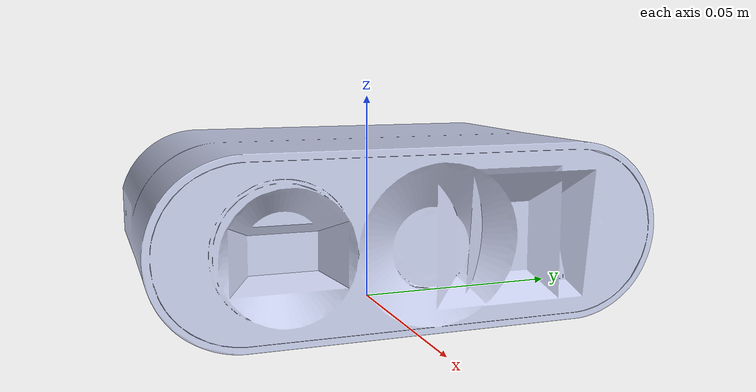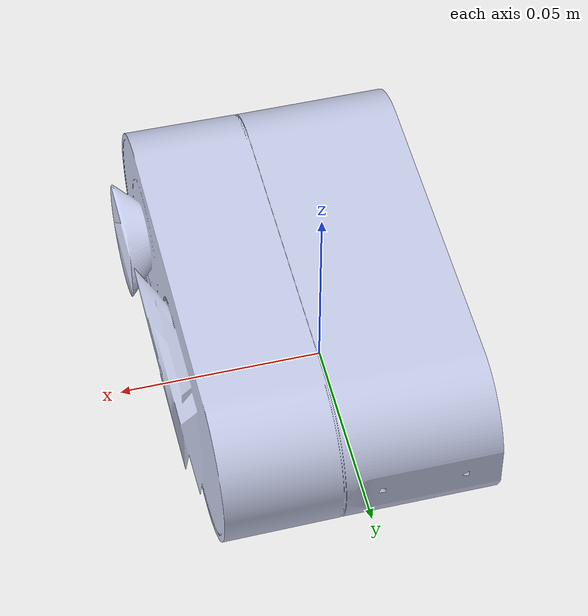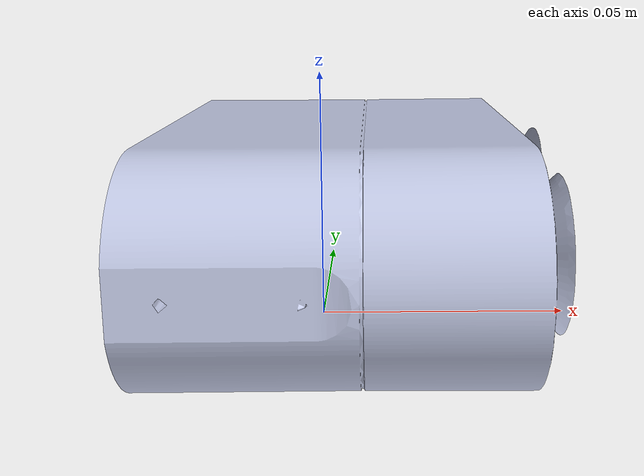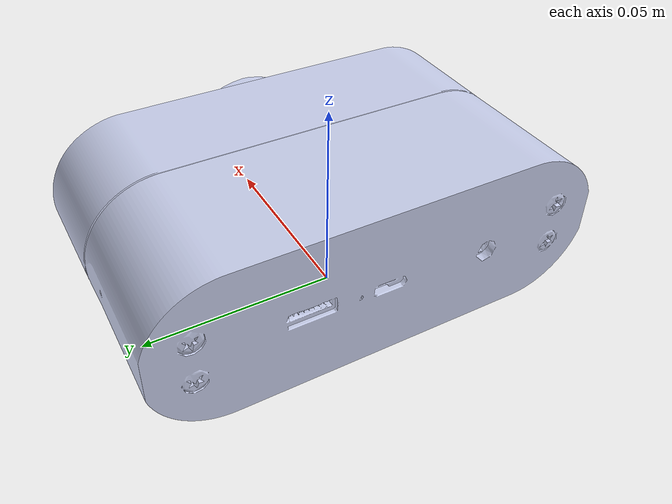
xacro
<?xml version="1.0"?>
<robot name="test_femto_bolt" xmlns:xacro="http://wiki.ros.org/xacro">
  <xacro:include filename="femto_bolt.urdf.xacro" />
  <link name="base_link"/>
  <!-- Instantiate the femto bolt macro once (fixed attribute syntax) -->
  <xacro:femto_bolt prefix="camera" parent="base_link" use_nominal_extrinsics="true">
    <origin xyz="0 0 0" rpy="0 0 0" />
  </xacro:femto_bolt>
</robot>

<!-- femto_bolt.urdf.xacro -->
<robot name="femto_bolt" xmlns:xacro="http://wiki.ros.org/xacro">

  <!--
  This is the URDF model for the Orbbec Femto Bolt camera
  -->

  <!-- Include files -->

  <!-- Properties -->
  <xacro:property name="M_PI" value="3.1415926535897931" />

  <!-- Dimensions from the provided specifications -->
  <xacro:property name="cam_width" value="0.1153"/>
  <xacro:property name="cam_height" value="0.06495"/>
  <xacro:property name="cam_depth" value="0.04026"/>
  <xacro:property name="mesh_path" value="package://orbbec_description/meshes/femto_bolt/" />

  <!-- The following values are approximate but the camera node
     publishes TF values with actual calibrated camera extrinsic values -->
  <xacro:property name="base_link_to_link_x" value="0.03645"/>
  <xacro:property name="base_link_to_link_y" value="0.00198"/>
  <xacro:property name="base_link_to_link_z" value="0.021"/>
  <xacro:property name="depth_to_ir_offset" value="0.0"/>
  <xacro:property name="camera_link_to_depth_rotation_roll" value="-0.0063718"/>
  <xacro:property name="camera_link_to_depth_rotation_pitch" value="0.1061316"/>
  <xacro:property name="camera_link_to_depth_rotation_yaw" value="0.000231"/>
  <xacro:property name="depth_to_color_offset_x" value="-0.0021445322036743163"/>
  <xacro:property name="depth_to_color_offset_y" value="-0.03267627716064453"/>
  <xacro:property name="depth_to_color_offset_z" value="-0.0010942233800888062"/>
  <xacro:property name="depth_to_color_rotation_roll" value="0.006371800289866152"/>
  <xacro:property name="depth_to_color_rotation_pitch" value="-0.10613163835054795"/>
  <xacro:property name="depth_to_color_rotation_yaw" value="-0.00023102465978322808"/>

  <xacro:macro name="femto_bolt" params="prefix parent *origin use_nominal_extrinsics:=true">

    <!-- camera with origin at bottom screw mount -->
    <joint name="${prefix}_base_joint" type="fixed">
      <xacro:insert_block name="origin" />
      <parent link="${parent}"/>
      <child link="${prefix}_base_link" />
    </joint>

    <link name="${prefix}_base_link" >
      <visual>
        <origin xyz="0 0 0" rpy="0 0 0"/>
        <geometry>
          <mesh filename="${mesh_path}femto_bolt.stl" />
        </geometry>
        <material name="">
          <color rgba="0.792156862745098 0.819607843137255 0.933333333333333 1" />
        </material>
      </visual>
      <collision>
        <origin xyz="0 0 0" rpy="0 0 0"/>
        <geometry>
          <mesh filename="${mesh_path}femto_bolt.stl" />
        </geometry>
      </collision>
      <inertial>
      <!-- The following are not reliable values, and should not be used for modeling -->
        <mass value="0.2"/>
        <origin xyz="0 0 0" rpy="0 0 0"/>
        <inertia ixx="0.0001" ixy="0.0" ixz="0.0" iyy="0.0001" iyz="0.0" izz="0.0001"/>
      </inertial>
    </link>

    <!-- Camera Link -->
    <joint name="${prefix}_link_joint" type="fixed">
      <origin xyz="${base_link_to_link_x} ${base_link_to_link_y} ${base_link_to_link_z}" rpy="0 0 0"/>
      <parent link="${prefix}_base_link"/>
      <child link="${prefix}_link"/>
    </joint>

    <link name="${prefix}_link" />

    <!-- Use the nominal extrinsics between camera frames if the calibrated extrinsics aren't being published. e.g. running the device in simulation  -->
    <xacro:if value="${use_nominal_extrinsics}">
      <!-- Depth Camera Frame -->
      <joint name="${prefix}_depth_joint" type="fixed">
        <origin xyz="0 0 0" rpy="${camera_link_to_depth_rotation_roll} ${camera_link_to_depth_rotation_pitch} ${camera_link_to_depth_rotation_yaw}"/>
        <parent link="${prefix}_link"/>
        <child link="${prefix}_depth_frame" />
      </joint>
      <link name="${prefix}_depth_frame"/>

      <joint name="${prefix}_depth_optical_joint" type="fixed">
        <origin xyz="0 0 0" rpy="${-M_PI/2} 0 ${-M_PI/2}" />
        <parent link="${prefix}_depth_frame" />
        <child link="${prefix}_depth_optical_frame" />
      </joint>
      <link name="${prefix}_depth_optical_frame"/>

      <!-- IR Camera Frame -->
      <joint name="${prefix}_ir_joint" type="fixed">
        <origin xyz="0 ${depth_to_ir_offset} 0" rpy="0 0 0" />
        <parent link="${prefix}_depth_frame" />
        <child link="${prefix}_ir_frame" />
      </joint>
      <link name="${prefix}_ir_frame"/>

      <joint name="${prefix}_ir_optical_joint" type="fixed">
        <origin xyz="0 0 0" rpy="${-M_PI/2} 0 ${-M_PI/2}" />
        <parent link="${prefix}_ir_frame"/>
        <child link="${prefix}_ir_optical_frame"/>
      </joint>
      <link name="${prefix}_ir_optical_frame"/>

      <!-- Color Camera Frame -->
      <joint name="${prefix}_color_joint" type="fixed">
        <origin xyz="${depth_to_color_offset_x} ${depth_to_color_offset_y} ${depth_to_color_offset_z}"
          rpy="${depth_to_color_rotation_roll} ${depth_to_color_rotation_pitch} ${depth_to_color_rotation_yaw}" />
        <parent link="${prefix}_depth_frame"/>
        <child link="${prefix}_color_frame"/>
      </joint>
      <link name="${prefix}_color_frame"/>

      <joint name="${prefix}_color_optical_joint" type="fixed">
        <origin xyz="0 0 0" rpy="${-M_PI/2} 0 ${-M_PI/2}" />
        <parent link="${prefix}_color_frame"/>
        <child link="${prefix}_color_optical_frame"/>
      </joint>
      <link name="${prefix}_color_optical_frame"/>
    </xacro:if>
  </xacro:macro>
</robot>
